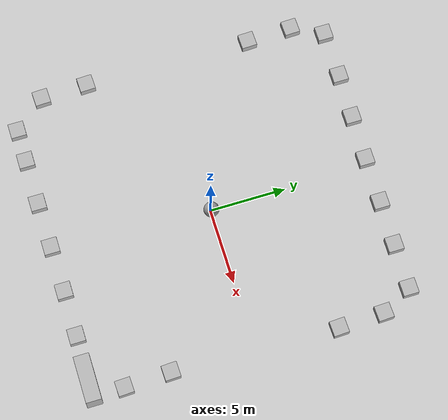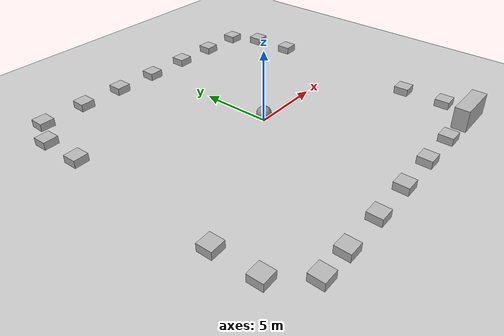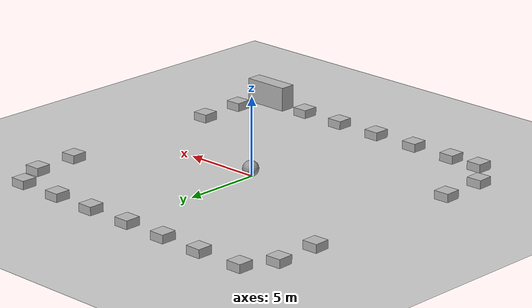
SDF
<sdf version="1.6">
 <world name="default">
  <plugin name="gazebo_ros_state" filename="libgazebo_ros_state.so">
   <ros><namespace>/gazebo</namespace><argument>model_states:=model_states_demo</argument></ros>
   <update_rate>1.0</update_rate>
  </plugin>
  <light name="sun" type="directional">
   <pose>0 0 10 0 -0 0</pose>
   <diffuse>0.8 0.8 0.8 1</diffuse>
   <specular>0.1 0.1 0.1 1</specular>
   <attenuation>
    <range>1000</range>
    <constant>0.9</constant>
    <linear>0.01</linear>
    <quadratic>0.001</quadratic>
   </attenuation>
   <direction>-0.5 0.5 -1</direction>
  </light>
  <model name="ground_plane">
   <static>1</static>
   <link name="link">
    <collision name="collision">
     <geometry><plane><normal>0 0 1</normal><size>100 100</size></plane></geometry>
     <surface><friction><ode><mu>100</mu><mu2>50</mu2></ode></friction></surface>
    </collision>
    <visual name="visual">
     <cast_shadows>0</cast_shadows>
     <geometry><plane><normal>0 0 1</normal><size>100 100</size></plane></geometry>
     <material>
      <script><uri>file://media/materials/scripts/gazebo.material</uri><name>Gazebo/Grey</name></script>
     </material>
    </visual>
   </link>
  </model>
  <gravity>0 0 -9.8</gravity>
  <magnetic_field>6e-06 2.3e-05 -4.2e-05</magnetic_field>
  <atmosphere type="adiabatic"/>
  <physics name="default_physics" default="0" type="ode">
   <max_step_size>0.001</max_step_size>
   <real_time_factor>1</real_time_factor>
   <real_time_update_rate>1000</real_time_update_rate>
  </physics>
  <scene><ambient>0.4 0.4 0.4 1</ambient><background>0.7 0.7 0.7 1</background><shadows>1</shadows></scene>
  <spherical_coordinates>
   <surface_model>EARTH_WGS84</surface_model>
   <latitude_deg>0</latitude_deg>
   <longitude_deg>0</longitude_deg>
   <elevation>0</elevation>
   <heading_deg>0</heading_deg>
  </spherical_coordinates>
  <model name="unit_sphere_0">
   <pose>0.068719 0.031087 0.5 0 -0 0</pose>
   <link name="link">
    <inertial>
     <mass>1</mass>
     <inertia><ixx>0.1</ixx><ixy>0</ixy><ixz>0</ixz><iyy>0.1</iyy><iyz>0</iyz><izz>0.1</izz></inertia>
    </inertial>
    <collision name="collision"><geometry><sphere><radius>0.5</radius></sphere></geometry></collision>
    <visual name="visual">
     <geometry><sphere><radius>0.5</radius></sphere></geometry>
     <material>
      <script><name>Gazebo/Grey</name><uri>file://media/materials/scripts/gazebo.material</uri></script>
     </material>
    </visual>
   </link>
  </model>
  <model name="brick_box_3x1x3">
   <static>1</static>
   <link name="chassis">
    <collision name="collision"><geometry><box><size>1 1 1</size></box></geometry></collision>
    <visual name="visual">
     <geometry><mesh><uri>model://brick_box_3x1x3/meshes/simple_box.dae</uri><scale>3 1 3</scale></mesh></geometry>
     <material>
      <script>
       <uri>model://brick_box_3x1x3/materials/scripts</uri>
       <uri>model://brick_box_3x1x3/materials/textures</uri>
       <name>BrickBox/Diffuse</name>
      </script>
     </material>
    </visual>
   </link>
   <pose>8.51334 -10.4509 0 0 -0 0</pose>
  </model>
  <model name="brick_box_3x1x3_clone">
   <static>1</static>
   <link name="chassis">
    <collision name="collision"><geometry><box><size>3 1 3</size></box></geometry></collision>
    <visual name="visual">
     <geometry><mesh><uri>model://brick_box_3x1x3/meshes/simple_box.dae</uri><scale>1 1 1</scale></mesh></geometry>
     <material>
      <script>
       <uri>model://brick_box_3x1x3/materials/scripts</uri>
       <uri>model://brick_box_3x1x3/materials/textures</uri>
       <name>BrickBox/Diffuse</name>
      </script>
     </material>
    </visual>
   </link>
   <pose>5.47822 -10.4016 0 0 -0 0</pose>
  </model>
  <model name="brick_box_3x1x3_clone_0">
   <static>1</static>
   <link name="chassis">
    <collision name="collision"><geometry><box><size>3 1 3</size></box></geometry></collision>
    <visual name="visual">
     <geometry><mesh><uri>model://brick_box_3x1x3/meshes/simple_box.dae</uri><scale>1 1 1</scale></mesh></geometry>
     <material>
      <script>
       <uri>model://brick_box_3x1x3/materials/scripts</uri>
       <uri>model://brick_box_3x1x3/materials/textures</uri>
       <name>BrickBox/Diffuse</name>
      </script>
     </material>
    </visual>
   </link>
   <pose>2.47967 -10.3802 0 0 -0 0</pose>
  </model>
  <model name="brick_box_3x1x3_clone_1">
   <static>1</static>
   <link name="chassis">
    <collision name="collision"><geometry><box><size>3 1 3</size></box></geometry></collision>
    <visual name="visual">
     <geometry><mesh><uri>model://brick_box_3x1x3/meshes/simple_box.dae</uri><scale>1 1 1</scale></mesh></geometry>
     <material>
      <script>
       <uri>model://brick_box_3x1x3/materials/scripts</uri>
       <uri>model://brick_box_3x1x3/materials/textures</uri>
       <name>BrickBox/Diffuse</name>
      </script>
     </material>
    </visual>
   </link>
   <pose>-0.560466 -10.4164 0 0 -0 0</pose>
  </model>
  <model name="brick_box_3x1x3_clone_2">
   <static>1</static>
   <link name="chassis">
    <collision name="collision"><geometry><box><size>3 1 3</size></box></geometry></collision>
    <visual name="visual">
     <geometry><mesh><uri>model://brick_box_3x1x3/meshes/simple_box.dae</uri><scale>1 1 1</scale></mesh></geometry>
     <material>
      <script>
       <uri>model://brick_box_3x1x3/materials/scripts</uri>
       <uri>model://brick_box_3x1x3/materials/textures</uri>
       <name>BrickBox/Diffuse</name>
      </script>
     </material>
    </visual>
   </link>
   <pose>-3.60565 -10.4621 0 0 -0 0</pose>
  </model>
  <model name="brick_box_3x1x3_clone_3">
   <static>1</static>
   <link name="chassis">
    <collision name="collision"><geometry><box><size>3 1 3</size></box></geometry></collision>
    <visual name="visual">
     <geometry><mesh><uri>model://brick_box_3x1x3/meshes/simple_box.dae</uri><scale>1 1 1</scale></mesh></geometry>
     <material>
      <script>
       <uri>model://brick_box_3x1x3/materials/scripts</uri>
       <uri>model://brick_box_3x1x3/materials/textures</uri>
       <name>BrickBox/Diffuse</name>
      </script>
     </material>
    </visual>
   </link>
   <pose>-6.61159 -10.4464 0 0 -0 0</pose>
  </model>
  <model name="brick_box_3x1x3_clone_4">
   <static>1</static>
   <link name="chassis">
    <collision name="collision"><geometry><box><size>3 1 3</size></box></geometry></collision>
    <visual name="visual">
     <geometry><mesh><uri>model://brick_box_3x1x3/meshes/simple_box.dae</uri><scale>1 1 1</scale></mesh></geometry>
     <material>
      <script>
       <uri>model://brick_box_3x1x3/materials/scripts</uri>
       <uri>model://brick_box_3x1x3/materials/textures</uri>
       <name>BrickBox/Diffuse</name>
      </script>
     </material>
    </visual>
   </link>
   <pose>-8.77352 -10.4355 0 0 -0 0</pose>
  </model>
  <model name="brick_box_3x1x3_clone_5">
   <static>1</static>
   <link name="chassis">
    <collision name="collision"><geometry><box><size>3 1 3</size></box></geometry></collision>
    <visual name="visual">
     <geometry><mesh><uri>model://brick_box_3x1x3/meshes/simple_box.dae</uri><scale>1 1 1</scale></mesh></geometry>
     <material>
      <script>
       <uri>model://brick_box_3x1x3/materials/scripts</uri>
       <uri>model://brick_box_3x1x3/materials/textures</uri>
       <name>BrickBox/Diffuse</name>
      </script>
     </material>
    </visual>
   </link>
   <pose>-10.5117 -8.3488 0 0 0 -1.53592</pose>
  </model>
  <model name="brick_box_3x1x3_clone_5_clone">
   <static>1</static>
   <link name="chassis">
    <collision name="collision"><geometry><box><size>3 1 3</size></box></geometry></collision>
    <visual name="visual">
     <geometry><mesh><uri>model://brick_box_3x1x3/meshes/simple_box.dae</uri><scale>1 1 1</scale></mesh></geometry>
     <material>
      <script>
       <uri>model://brick_box_3x1x3/materials/scripts</uri>
       <uri>model://brick_box_3x1x3/materials/textures</uri>
       <name>BrickBox/Diffuse</name>
      </script>
     </material>
    </visual>
   </link>
   <pose>-10.6007 -5.30553 0 0 0 -1.53592</pose>
  </model>
  <model name="brick_box_3x1x3_clone_5_clone_1_clone">
   <static>1</static>
   <link name="chassis">
    <collision name="collision"><geometry><box><size>3 1 3</size></box></geometry></collision>
    <visual name="visual">
     <geometry><mesh><uri>model://brick_box_3x1x3/meshes/simple_box.dae</uri><scale>1 1 1</scale></mesh></geometry>
     <material>
      <script>
       <uri>model://brick_box_3x1x3/materials/scripts</uri>
       <uri>model://brick_box_3x1x3/materials/textures</uri>
       <name>BrickBox/Diffuse</name>
      </script>
     </material>
    </visual>
   </link>
   <pose>-10.4866 5.71134 0 0 0 -1.53592</pose>
  </model>
  <model name="brick_box_3x1x3_clone_5_clone_1_clone_0">
   <static>1</static>
   <link name="chassis">
    <collision name="collision"><geometry><box><size>3 1 3</size></box></geometry></collision>
    <visual name="visual">
     <geometry><mesh><uri>model://brick_box_3x1x3/meshes/simple_box.dae</uri><scale>1 1 1</scale></mesh></geometry>
     <material>
      <script>
       <uri>model://brick_box_3x1x3/materials/scripts</uri>
       <uri>model://brick_box_3x1x3/materials/textures</uri>
       <name>BrickBox/Diffuse</name>
      </script>
     </material>
    </visual>
   </link>
   <pose>-10.5681 8.70894 0 0 0 -1.53592</pose>
  </model>
  <model name="brick_box_3x1x3_clone_6">
   <static>1</static>
   <link name="chassis">
    <collision name="collision"><geometry><box><size>3 1 3</size></box></geometry></collision>
    <visual name="visual">
     <geometry><mesh><uri>model://brick_box_3x1x3/meshes/simple_box.dae</uri><scale>1 1 1</scale></mesh></geometry>
     <material>
      <script>
       <uri>model://brick_box_3x1x3/materials/scripts</uri>
       <uri>model://brick_box_3x1x3/materials/textures</uri>
       <name>BrickBox/Diffuse</name>
      </script>
     </material>
    </visual>
   </link>
   <pose>8.55708 10.4162 0 0 -0 0</pose>
  </model>
  <model name="brick_box_3x1x3_clone_7">
   <static>1</static>
   <link name="chassis">
    <collision name="collision"><geometry><box><size>3 1 3</size></box></geometry></collision>
    <visual name="visual">
     <geometry><mesh><uri>model://brick_box_3x1x3/meshes/simple_box.dae</uri><scale>1 1 1</scale></mesh></geometry>
     <material>
      <script>
       <uri>model://brick_box_3x1x3/materials/scripts</uri>
       <uri>model://brick_box_3x1x3/materials/textures</uri>
       <name>BrickBox/Diffuse</name>
      </script>
     </material>
    </visual>
   </link>
   <pose>5.58493 10.4566 0 0 -0 0</pose>
  </model>
  <model name="brick_box_3x1x3_clone_8">
   <static>1</static>
   <link name="chassis">
    <collision name="collision"><geometry><box><size>3 1 3</size></box></geometry></collision>
    <visual name="visual">
     <geometry><mesh><uri>model://brick_box_3x1x3/meshes/simple_box.dae</uri><scale>1 1 1</scale></mesh></geometry>
     <material>
      <script>
       <uri>model://brick_box_3x1x3/materials/scripts</uri>
       <uri>model://brick_box_3x1x3/materials/textures</uri>
       <name>BrickBox/Diffuse</name>
      </script>
     </material>
    </visual>
   </link>
   <pose>2.61861 10.5169 0 0 -0 0</pose>
  </model>
  <model name="brick_box_3x1x3_clone_9">
   <static>1</static>
   <link name="chassis">
    <collision name="collision"><geometry><box><size>3 1 3</size></box></geometry></collision>
    <visual name="visual">
     <geometry><mesh><uri>model://brick_box_3x1x3/meshes/simple_box.dae</uri><scale>1 1 1</scale></mesh></geometry>
     <material>
      <script>
       <uri>model://brick_box_3x1x3/materials/scripts</uri>
       <uri>model://brick_box_3x1x3/materials/textures</uri>
       <name>BrickBox/Diffuse</name>
      </script>
     </material>
    </visual>
   </link>
   <pose>-0.430821 10.5435 0 0 -0 0</pose>
  </model>
  <model name="brick_box_3x1x3_clone_10">
   <static>1</static>
   <link name="chassis">
    <collision name="collision"><geometry><box><size>3 1 3</size></box></geometry></collision>
    <visual name="visual">
     <geometry><mesh><uri>model://brick_box_3x1x3/meshes/simple_box.dae</uri><scale>1 1 1</scale></mesh></geometry>
     <material>
      <script>
       <uri>model://brick_box_3x1x3/materials/scripts</uri>
       <uri>model://brick_box_3x1x3/materials/textures</uri>
       <name>BrickBox/Diffuse</name>
      </script>
     </material>
    </visual>
   </link>
   <pose>-3.44044 10.636 0 0 -0 0</pose>
  </model>
  <model name="brick_box_3x1x3_clone_11">
   <static>1</static>
   <link name="chassis">
    <collision name="collision"><geometry><box><size>3 1 3</size></box></geometry></collision>
    <visual name="visual">
     <geometry><mesh><uri>model://brick_box_3x1x3/meshes/simple_box.dae</uri><scale>1 1 1</scale></mesh></geometry>
     <material>
      <script>
       <uri>model://brick_box_3x1x3/materials/scripts</uri>
       <uri>model://brick_box_3x1x3/materials/textures</uri>
       <name>BrickBox/Diffuse</name>
      </script>
     </material>
    </visual>
   </link>
   <pose>-6.42422 10.7383 0 0 -0 0</pose>
  </model>
  <model name="brick_box_3x1x3_clone_12">
   <static>1</static>
   <link name="chassis">
    <collision name="collision"><geometry><box><size>3 1 3</size></box></geometry></collision>
    <visual name="visual">
     <geometry><mesh><uri>model://brick_box_3x1x3/meshes/simple_box.dae</uri><scale>1 1 1</scale></mesh></geometry>
     <material>
      <script>
       <uri>model://brick_box_3x1x3/materials/scripts</uri>
       <uri>model://brick_box_3x1x3/materials/textures</uri>
       <name>BrickBox/Diffuse</name>
      </script>
     </material>
    </visual>
   </link>
   <pose>-9.54149 10.7108 0 0 -0 0</pose>
  </model>
  <model name="brick_box_3x1x3_clone_5_clone_1_clone_0_clone">
   <static>1</static>
   <link name="chassis">
    <collision name="collision"><geometry><box><size>3 1 3</size></box></geometry></collision>
    <visual name="visual">
     <geometry><mesh><uri>model://brick_box_3x1x3/meshes/simple_box.dae</uri><scale>1 1 1</scale></mesh></geometry>
     <material>
      <script>
       <uri>model://brick_box_3x1x3/materials/scripts</uri>
       <uri>model://brick_box_3x1x3/materials/textures</uri>
       <name>BrickBox/Diffuse</name>
      </script>
     </material>
    </visual>
   </link>
   <pose>9.62243 8.40223 0 0 0 -1.53592</pose>
  </model>
  <model name="brick_box_3x1x3_clone_5_clone_1_clone_0_clone_0">
   <static>1</static>
   <link name="chassis">
    <collision name="collision"><geometry><box><size>3 1 3</size></box></geometry></collision>
    <visual name="visual">
     <geometry><mesh><uri>model://brick_box_3x1x3/meshes/simple_box.dae</uri><scale>1 1 1</scale></mesh></geometry>
     <material>
      <script>
       <uri>model://brick_box_3x1x3/materials/scripts</uri>
       <uri>model://brick_box_3x1x3/materials/textures</uri>
       <name>BrickBox/Diffuse</name>
      </script>
     </material>
    </visual>
   </link>
   <pose>9.72814 5.4227 0 0 0 -1.53592</pose>
  </model>
  <model name="brick_box_3x1x3_clone_5_clone_1_clone_0_clone_1">
   <static>1</static>
   <link name="chassis">
    <collision name="collision"><geometry><box><size>3 1 3</size></box></geometry></collision>
    <visual name="visual">
     <geometry><mesh><uri>model://brick_box_3x1x3/meshes/simple_box.dae</uri><scale>1 1 1</scale></mesh></geometry>
     <material>
      <script>
       <uri>model://brick_box_3x1x3/materials/scripts</uri>
       <uri>model://brick_box_3x1x3/materials/textures</uri>
       <name>BrickBox/Diffuse</name>
      </script>
     </material>
    </visual>
   </link>
   <pose>9.47228 -8.42477 0 0 0 -1.53592</pose>
  </model>
  <model name="brick_box_3x1x3_clone_5_clone_1_clone_0_clone_2">
   <static>1</static>
   <link name="chassis">
    <collision name="collision"><geometry><box><size>3 1 3</size></box></geometry></collision>
    <visual name="visual">
     <geometry><mesh><uri>model://brick_box_3x1x3/meshes/simple_box.dae</uri><scale>1 1 1</scale></mesh></geometry>
     <material>
      <script>
       <uri>model://brick_box_3x1x3/materials/scripts</uri>
       <uri>model://brick_box_3x1x3/materials/textures</uri>
       <name>BrickBox/Diffuse</name>
      </script>
     </material>
    </visual>
   </link>
   <pose>9.37962 -5.40462 0 0 0 -1.53592</pose>
  </model>
 </world>
</sdf>
